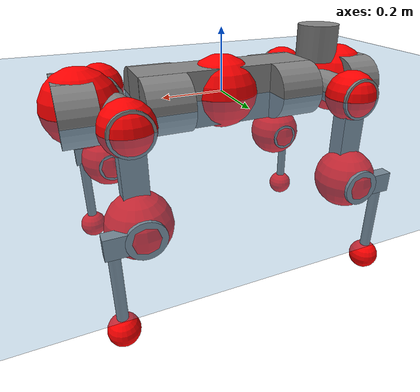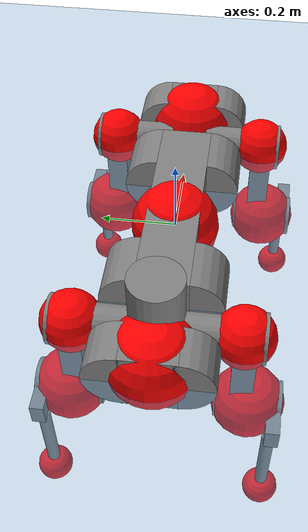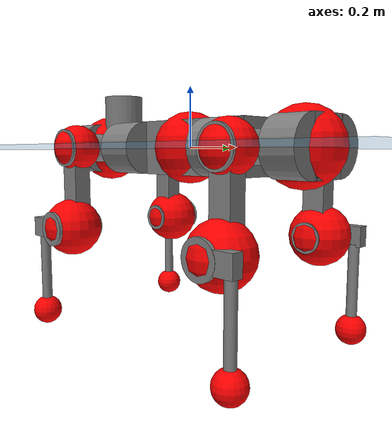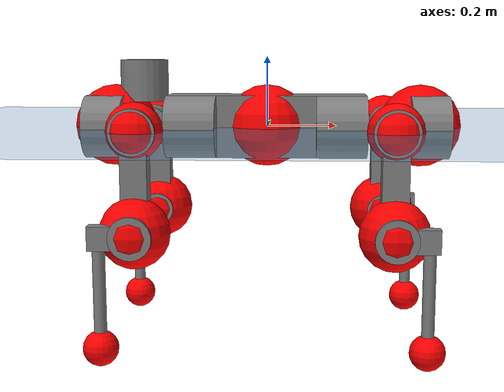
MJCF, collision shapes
<mujoco model="anymal_c">
  <compiler angle="radian" assetdir="assets" balanceinertia="true" inertiafromgeom="false"/>

  <option timestep="0.005" density="1.2" viscosity="2e-05"/>

  <size nkey="1"/>

  <visual>
    <quality shadowsize="8192"/>
    <map shadowclip="0.5"/>
  </visual>

  <default>
    <default class="/">
      <material specular="0" shininess="0.25"/>
      <geom contype="0" conaffinity="0" group="1" solref="-1000 -80"/>
      <site size="0.01 0.005 0.005" group="5"/>
      <general forcelimited="true" forcerange="-80 80" biastype="affine" gainprm="80" biasprm="0 -80 -2"/>
      <default class="anymal_c">
        <joint armature="0.01" damping="0.01" frictionloss="0.1"/>
        <default class="visual">
          <geom type="mesh" group="2"/>
          <default class="visual_zflip"/>
        </default>
        <default class="collision">
          <geom type="cylinder" group="3"/>
          <default class="foot">
            <geom size="0.03 0 0" type="sphere" condim="6" priority="1" friction="0.8 0.02 0.01" solimp="0.015 1 0.03"/>
          </default>
        </default>
      </default>
      <default class="reward_collision_sphere">
        <geom group="5" rgba="1 0 0 1"/>
      </default>
    </default>
  </default>

  <asset>
    <texture type="skybox" colorspace="auto" name="//unnamed_texture_0" builtin="gradient" rgb1="0.95 0.95 0.95" rgb2="0.95 0.95 0.95" width="100" height="600"/>
    <texture type="2d" colorspace="auto" name="texplane" builtin="checker" rgb1="0.345 0.575 0.748" rgb2="0.345 0.575 0.748" markrgb="1 1 1" width="512" height="512"/>
    <texture type="2d" colorspace="linear" name="base" file="base.png"/>
    <texture type="2d" colorspace="linear" name="top_shell" file="top_shell.png"/>
    <texture type="2d" colorspace="linear" name="bottom_shell" file="bottom_shell.png"/>
    <texture type="2d" colorspace="linear" name="remote" file="remote.png"/>
    <texture type="2d" colorspace="linear" name="hatch" file="hatch.png"/>
    <texture type="2d" colorspace="linear" name="handle" file="handle.png"/>
    <texture type="2d" colorspace="linear" name="face" file="face.png"/>
    <texture type="2d" colorspace="linear" name="battery" file="battery.png"/>
    <texture type="2d" colorspace="linear" name="lidar_cage" file="lidar_cage.png"/>
    <texture type="2d" colorspace="linear" name="depth_camera" file="depth_camera.png"/>
    <texture type="2d" colorspace="linear" name="wide_angle_camera" file="wide_angle_camera.png"/>
    <texture type="2d" colorspace="linear" name="lidar" file="lidar.png"/>
    <texture type="2d" colorspace="linear" name="drive" file="drive.png"/>
    <texture type="2d" colorspace="linear" name="hip_l" file="hip_l.png"/>
    <texture type="2d" colorspace="linear" name="shank_l" file="shank_l.png"/>
    <texture type="2d" colorspace="linear" name="foot" file="foot.png"/>
    <texture type="2d" colorspace="linear" name="thigh" file="thigh.png"/>
    <texture type="2d" colorspace="linear" name="shank_r" file="shank_r.png"/>
    <texture type="2d" colorspace="linear" name="hip_r" file="hip_r.png"/>
    <material name="MatPlane" class="/" texture="texplane" texuniform="true" texrepeat="2 2" specular="0.9" shininess="0.5"/>
    <material name="black_plastic" class="/" rgba="0.007 0.007 0.007 1"/>
    <material name="green" class="/" rgba="0.052 0.178 0.033 1"/>
    <material name="red" class="/" rgba="0.178 0.006 0.005 1"/>
    <material name="yellow" class="/" rgba="0.178 0.119 0.006 1"/>
    <material name="lwl" class="/" rgba="0.8 0.8 0.8 1"/>
    <material name="base" class="/" texture="base"/>
    <material name="top_shell" class="/" texture="top_shell"/>
    <material name="bottom_shell" class="/" texture="bottom_shell"/>
    <material name="hip_l" class="/" texture="hip_l"/>
    <material name="thigh" class="/" texture="thigh"/>
    <material name="shank_l" class="/" texture="shank_l"/>
    <material name="foot" class="/" texture="foot"/>
    <material name="hip_r" class="/" texture="hip_r"/>
    <material name="shank" class="/" texture="shank_r"/>
    <material name="hatch" class="/" texture="hatch"/>
    <material name="remote" class="/" texture="remote"/>
    <material name="handle" class="/" texture="handle"/>
    <material name="face" class="/" texture="face"/>
    <material name="depth_camera" class="/" texture="depth_camera"/>
    <material name="wide_angle_camera" class="/" texture="wide_angle_camera"/>
    <material name="battery" class="/" texture="battery"/>
    <material name="lidar_cage" class="/" texture="lidar_cage"/>
    <material name="lidar" class="/" texture="lidar"/>
    <material name="drive" class="/" texture="drive"/>
    <mesh name="base_0" class="/" file="base_0.obj"/>
    <mesh name="base_1" class="/" file="base_1.obj"/>
    <mesh name="base_2" class="/" file="base_2.obj"/>
    <mesh name="base_3" class="/" file="base_3.obj"/>
    <mesh name="base_4" class="/" file="base_4.obj"/>
    <mesh name="base_5" class="/" file="base_5.obj"/>
    <mesh name="top_shell" class="/" file="top_shell.obj"/>
    <mesh name="bottom_shell" class="/" file="bottom_shell.obj"/>
    <mesh name="remote" class="/" file="remote.obj"/>
    <mesh name="handle" class="/" file="handle.obj"/>
    <mesh name="face" class="/" file="face.obj"/>
    <mesh name="wide_angle_camera" class="/" file="wide_angle_camera.obj"/>
    <mesh name="depth_camera" class="/" file="depth_camera.obj"/>
    <mesh name="battery" class="/" file="battery.obj"/>
    <mesh name="lidar_cage" class="/" file="lidar_cage.obj"/>
    <mesh name="lidar" class="/" file="lidar.obj"/>
    <mesh name="drive" class="/" file="drive.obj"/>
    <mesh name="hip_l" class="/" file="hip_l.obj"/>
    <mesh name="thigh" class="/" file="thigh.obj"/>
    <mesh name="shank_l" class="/" file="shank_l.obj"/>
    <mesh name="foot" class="/" file="foot.obj"/>
    <mesh name="hip_r" class="/" file="hip_r.obj"/>
    <mesh name="hatch" class="/" file="hatch.obj"/>
    <mesh name="shank_r" class="/" file="shank_r.obj"/>
  </asset>

  <worldbody>
    <geom name="floor" class="/" size="100 100 0.125" type="plane" group="0" material="MatPlane"/>
    <light name="toplight_shadow" class="/" pos="0 0 5" dir="0.0990148 0.0990148 -0.990148" type="directional" ambient="0.04 0.04 0.04" diffuse="0.55 0.55 0.55" specular="0.12 0.12 0.12"/>
    <light name="toplight_fill" class="/" pos="0 0 5" dir="0.0990148 0.0990148 -0.990148" type="directional" castshadow="false" ambient="0.04 0.04 0.04" diffuse="0.3 0.3 0.3" specular="0.08 0.08 0.08"/>
    <body name="trunk" childclass="anymal_c" pos="-0.000291648 -0.000105916 0.000864625" quat="1 -1.97169e-06 8.88307e-05 -3.79628e-05">
      <inertial pos="0.00301657 0.000279298 0.0482948" quat="0.499558 0.49938 0.501751 0.499307" mass="17.9455" diaginertia="0.584272 0.614752 0.188401"/>
      <joint name="//unnamed_joint_0" type="free" armature="0" damping="0" frictionloss="0"/>
      <geom name="//unnamed_geom_1" class="visual" material="green" mesh="base_0"/>
      <geom name="//unnamed_geom_2" class="visual" material="yellow" mesh="base_1"/>
      <geom name="//unnamed_geom_3" class="visual" material="red" mesh="base_2"/>
      <geom name="//unnamed_geom_4" class="visual" material="black_plastic" mesh="base_3"/>
      <geom name="//unnamed_geom_5" class="visual" material="lwl" mesh="base_4"/>
      <geom name="//unnamed_geom_6" class="visual" material="base" mesh="base_5"/>
      <geom name="trunk_1" class="collision" size="0.286108 0.0690606 0.0887922" type="box"/>
      <geom name="trunk_2" class="collision" size="0.0887922 0.071527" pos="0.214029 0.0700077 0" quat="0.707107 0 0.707107 0"/>
      <geom name="trunk_3" class="collision" size="0.0887922 0.071527" pos="-0.214029 0.0700077 0" quat="0.707107 0 0.707107 0"/>
      <geom name="trunk_4" class="collision" size="0.0887922 0.071527" pos="0.214029 -0.0700077 0" quat="0.707107 0 0.707107 0"/>
      <geom name="trunk_5" class="collision" size="0.0887922 0.071527" pos="-0.214029 -0.0700077 0" quat="0.707107 0 0.707107 0"/>
      <geom name="//unnamed_geom_12" class="visual" material="top_shell" mesh="top_shell"/>
      <geom name="//unnamed_geom_13" class="visual" material="bottom_shell" mesh="bottom_shell"/>
      <geom name="//unnamed_geom_14" class="visual" material="remote" mesh="remote"/>
      <geom name="//unnamed_geom_15" class="visual" material="handle" mesh="handle"/>
      <geom name="//unnamed_geom_16" class="visual" pos="0.407885 0 0" quat="1 0 0 0" material="face" mesh="face"/>
      <geom name="trunk_6" class="collision" size="0.0542619 0.0690606 0.0887922" pos="0.462007 0 0" type="box"/>
      <geom name="//unnamed_geom_18" class="collision" size="0.0887922 0.0542619" pos="0.462007 0.0700077 0" quat="0.707107 0 0.707107 0"/>
      <geom name="//unnamed_geom_19" class="collision" size="0.0887922 0.0542619" pos="0.462007 -0.0700077 0" quat="0.707107 0 0.707107 0"/>
      <geom name="//unnamed_geom_20" class="visual" pos="0.454282 0 -0.0284229" quat="0.965926 0 0.258819 0" material="depth_camera" mesh="depth_camera"/>
      <geom name="//unnamed_geom_21" class="visual" pos="0.504813 0 0.0146045" material="wide_angle_camera" mesh="wide_angle_camera"/>
      <geom name="//unnamed_geom_22" class="visual_zflip" pos="-0.407885 0 0" quat="0 0 0 1" material="face" mesh="face"/>
      <geom name="trunk_7" class="collision" size="0.0542619 0.0690606 0.0887922" pos="-0.462007 0 0" quat="0 0 0 1" type="box"/>
      <geom name="//unnamed_geom_24" class="collision" size="0.0887922 0.0542619" pos="-0.462007 -0.0700077 0" quat="0 -0.707107 0 0.707107"/>
      <geom name="//unnamed_geom_25" class="collision" size="0.0887922 0.0542619" pos="-0.462007 0.0700077 0" quat="0 -0.707107 0 0.707107"/>
      <geom name="//unnamed_geom_26" class="visual" pos="-0.454282 0 -0.0284229" quat="0 -0.258819 0 0.965926" material="depth_camera" mesh="depth_camera"/>
      <geom name="//unnamed_geom_27" class="visual_zflip" pos="-0.504813 0 0.0146045" quat="0 0 0 1" material="wide_angle_camera" mesh="wide_angle_camera"/>
      <geom name="//unnamed_geom_28" class="visual" material="battery" mesh="battery"/>
      <geom name="//unnamed_geom_29" class="visual" pos="0 0.076679 0.028405" quat="0.683013 -0.183013 0.183013 0.683013" material="depth_camera" mesh="depth_camera"/>
      <geom name="//unnamed_geom_30" class="visual" pos="0 -0.076679 0.028405" quat="0.683013 0.183013 0.183013 -0.683013" material="depth_camera" mesh="depth_camera"/>
      <geom name="//unnamed_geom_31" class="visual" pos="-0.358191 0 0.0717056" quat="1 0 0 0" material="lidar_cage" mesh="lidar_cage"/>
      <geom name="trunk_8" class="collision" size="0.0690606 0.0591948" pos="-0.358191 0 0.130241"/>
      <geom name="//unnamed_geom_33" class="visual" pos="-0.358191 6.31325e-06 0.138728" quat="0.707107 0 0 -0.707107" material="lidar" mesh="lidar"/>
      <geom name="//unnamed_geom_34" class="visual" pos="0.295114 0.104003 4.23038e-10" quat="0.258819 0.965926 0 0" material="drive" mesh="drive"/>
      <geom name="//unnamed_geom_35" class="visual" pos="0.295114 -0.104003 -4.23038e-10" quat="0.258819 -0.965926 0 0" material="drive" mesh="drive"/>
      <geom name="//unnamed_geom_36" class="visual" pos="-0.295114 0.104003 -4.23038e-10" quat="0 0 0.965926 -0.258819" material="drive" mesh="drive"/>
      <geom name="//unnamed_geom_37" class="visual" pos="-0.295114 -0.104003 4.23038e-10" quat="0 0 -0.965926 -0.258819" material="drive" mesh="drive"/>
      <geom name="//unnamed_geom_38" class="visual" pos="0.114149 0 0.0712178" quat="1 0 0 0" material="hatch" mesh="hatch"/>
      <geom name="//unnamed_geom_39" class="reward_collision_sphere" size="0.11839"/>
      <geom name="//unnamed_geom_40" class="reward_collision_sphere" size="0.11839" pos="0.442819 0 0"/>
      <geom name="//unnamed_geom_41" class="reward_collision_sphere" size="0.11839" pos="-0.442819 0 0"/>
      <site name="imu" pos="0.243113 0.0083085 0.0432169" size="0.00986579"/>
      <camera name="track" pos="0 -2.00022 0" quat="0.707107 0.707107 0 0" mode="trackcom"/>
      <camera name="ego_camera" pos="0.442819 0 -0.0390235" quat="-0.5 -0.5 0.5 0.5"/>
      <body name="LF_HIP" pos="0.29557 0.10392 -0.000585789" quat="0.258572 0.965992 -7.99221e-05 3.58274e-05">
        <inertial pos="0.0555184 -0.0145125 -0.00762996" quat="-0.129962 0.708587 -0.132459 0.680786" mass="2.67903" diaginertia="0.00541443 0.00491765 0.00292091"/>
        <joint name="LF_HAA" pos="0 0 0" axis="0.999998 0.00195959 -0.00020349" range="-0.713507 0.478071" armature="0.00989696" damping="0.00684715" frictionloss="0.0970492"/>
        <geom name="//unnamed_geom_42" class="visual" pos="0 2.48854e-05 -4.08741e-06" quat="0.258819 -0.965926 0 0" material="hip_l" mesh="hip_l"/>
        <geom name="//unnamed_geom_43" class="visual" pos="0.0589441 -0.0716261 -0.041172" quat="0.183013 -0.683013 0.683013 0.183013" material="drive" mesh="drive"/>
        <geom name="//unnamed_geom_44" class="collision" size="0.049329 0.0690606" pos="0.0589441 -0.0119611 -0.00673643" quat="-0.353553 -0.612372 0.612372 -0.353553"/>
        <body name="LF_THIGH" pos="0.0593364 -0.0738134 -0.0410948" quat="0.182932 -0.682887 0.683094 0.183259">
          <inertial pos="0.030163 0.000110582 -0.239875" quat="0.993244 -0.00396066 -0.0789309 0.0849777" mass="2.91038" diaginertia="0.0279018 0.0298108 0.00367473"/>
          <joint name="LF_HFE" pos="0 0 0" axis="1 5.77766e-06 -0.000296865" stiffness="0.00266922" range="-3.1522 3.14569" armature="0.00996358" damping="0.00694686" frictionloss="0.100633"/>
          <geom name="//unnamed_geom_45" class="visual" pos="-0.000319719 -5.03802e-07 0" quat="0.707107 0 0 -0.707107" material="thigh" mesh="thigh"/>
          <geom name="//unnamed_geom_46" class="collision" size="0.0641277 0.0394632" pos="0.0393616 0 0" quat="0.5 0.5 -0.5 -0.5"/>
          <geom name="//unnamed_geom_47" class="collision" size="0.0369967 0.0295974 0.139417" pos="0.0295212 0 -0.137864" quat="0.707107 0 0 -0.707107" type="box"/>
          <geom name="//unnamed_geom_48" class="visual" pos="0.0986993 0 -0.278042" quat="1 0 0 0" material="drive" mesh="drive"/>
          <geom name="//unnamed_geom_49" class="collision" size="0.049329 0.0690606" pos="0.0298164 0 -0.278042" quat="0.707107 0 0.707107 0"/>
          <geom name="//unnamed_geom_50" class="reward_collision_sphere" size="0.0789264" pos="0.024601 0 0"/>
          <body name="LF_SHANK" pos="0.0978135 0.000499176 -0.278292" quat="1 0.000231142 0.000156646 8.21953e-05">
            <inertial pos="0.00492645 -0.0611783 -0.0791933" quat="0.993124 -0.114314 0.000688179 -0.0252327" mass="0.569937" diaginertia="0.00945006 0.0092686 0.000991768"/>
            <joint name="LF_KFE" pos="0 0 0" axis="1 0.000328313 0.000375009" range="-3.123 3.14108" armature="0.0095349" damping="0.010322" frictionloss="0.0944965"/>
            <geom name="//unnamed_geom_51" class="visual" pos="-0.000104253 -0.000555884 0" quat="0.707107 0 0 -0.707107" material="shank_l" mesh="shank_l"/>
            <geom name="LF_kfe_act" class="collision" size="0.0591948 0.0197316" pos="0.0196808 0 0" quat="0.5 0.5 -0.5 -0.5"/>
            <geom name="//unnamed_geom_53" class="collision" size="0.0567273 0.0332971 0.018745" pos="0.0196808 -0.0575054 0" quat="0.5 0.5 -0.5 -0.5" type="box"/>
            <geom name="//unnamed_geom_54" class="visual" pos="0.0128418 -0.0881389 -0.329719" quat="0.382683 0 0 -0.92388" material="foot" mesh="foot"/>
            <geom name="LF_calf" class="collision" size="0.0172651 0.139356" pos="0.0128417 -0.0879597 -0.16486" quat="0.707107 0 0 -0.707107"/>
            <geom name="LF_foot" class="foot" size="0.0309857" pos="0.0128417 -0.0879597 -0.307768" quat="0.707107 0 0 -0.707107"/>
            <geom name="//unnamed_geom_57" class="reward_collision_sphere" size="0.0986579" pos="-0.0492021 0 0"/>
            <geom name="//unnamed_geom_58" class="reward_collision_sphere" size="0.049329" pos="0.0128417 -0.0879597 -0.307768"/>
            <site name="LF_foot" class="foot" pos="0.0128417 -0.0879597 -0.307768" quat="0.707107 0 0 -0.707107" size="0.00986579"/>
          </body>
        </body>
      </body>
      <body name="RF_HIP" pos="0.296364 -0.104405 -0.000244597" quat="0.258895 -0.965906 0.000128558 2.68283e-05">
        <inertial pos="0.0554702 0.0159188 -0.00845982" quat="0.135787 0.678657 0.127791 0.710392" mass="2.62661" diaginertia="0.00536784 0.00482775 0.00287583"/>
        <joint name="RF_HAA" pos="0 0 0" axis="0.999998 0.00214661 0.00039805" range="-0.489115 0.724074" armature="0.0101208" damping="0.00947156" frictionloss="0.10035"/>
        <geom name="//unnamed_geom_59" class="visual" pos="0 -2.48852e-05 -4.0874e-06" quat="0.258819 0.965926 0 0" material="hip_r" mesh="hip_r"/>
        <geom name="//unnamed_geom_60" class="visual" pos="0.0589441 0.0716261 -0.041172" quat="0.183013 0.683013 0.683013 -0.183013" material="drive" mesh="drive"/>
        <geom name="//unnamed_geom_61" class="collision" size="0.049329 0.0690606" pos="0.0589441 0.0119611 -0.00673643" quat="-0.353553 0.612372 0.612372 0.353553"/>
        <body name="RF_THIGH" pos="0.0593624 0.0725246 -0.0407043" quat="0.183091 0.683117 0.682874 -0.183063">
          <inertial pos="0.0304456 0.000103977 -0.239197" quat="0.992605 -0.00712773 -0.0813418 0.0898274" mass="2.97768" diaginertia="0.028083 0.0298785 0.0037158"/>
          <joint name="RF_HFE" pos="0 0 0" axis="0.999998 0.00178889 -3.127e-05" stiffness="0.00598247" range="-3.13602 3.12107" armature="0.00989504" damping="0.0116393" frictionloss="0.102097"/>
          <geom name="//unnamed_geom_62" class="visual" pos="-0.000319719 -5.03802e-07 0" quat="0.707107 0 0 -0.707107" material="thigh" mesh="thigh"/>
          <geom name="//unnamed_geom_63" class="collision" size="0.0641277 0.0394632" pos="0.0393616 0 0" quat="0.5 0.5 0.5 0.5"/>
          <geom name="//unnamed_geom_64" class="collision" size="0.0369967 0.0295974 0.139417" pos="0.0295212 0 -0.137864" quat="0.707107 0 0 0.707107" type="box"/>
          <geom name="//unnamed_geom_65" class="visual" pos="0.0986993 0 -0.278042" quat="1 0 0 0" material="drive" mesh="drive"/>
          <geom name="//unnamed_geom_66" class="collision" size="0.049329 0.0690606" pos="0.0298164 0 -0.278042" quat="0.707107 0 0.707107 0"/>
          <geom name="//unnamed_geom_67" class="reward_collision_sphere" size="0.0789264" pos="0.024601 0 0"/>
          <body name="RF_SHANK" pos="0.0983441 0.000106485 -0.278141" quat="1 9.36213e-05 7.61712e-05 0.000103483">
            <inertial pos="0.00560239 0.0614534 -0.0785975" quat="0.993208 0.112987 -0.00155062 0.0277466" mass="0.563954" diaginertia="0.00934637 0.00931993 0.000986404"/>
            <joint name="RF_KFE" pos="0 0 0" axis="0.999997 0.00133434 0.00206633" range="-3.12322 3.12067" armature="0.00972114" damping="0.00879053" frictionloss="0.0980251"/>
            <geom name="//unnamed_geom_68" class="visual" pos="-0.000104253 0.000555882 0" quat="0.707107 0 0 0.707107" material="shank" mesh="shank_r"/>
            <geom name="RF_kfe_act" class="collision" size="0.0591948 0.0197316" pos="0.0196808 0 0" quat="0.5 0.5 0.5 0.5"/>
            <geom name="//unnamed_geom_70" class="collision" size="0.0567273 0.0332971 0.018745" pos="0.0196808 0.0575054 0" quat="0.5 0.5 0.5 0.5" type="box"/>
            <geom name="//unnamed_geom_71" class="visual" pos="0.0128417 0.0881389 -0.329719" quat="0.382683 0 0 0.92388" material="foot" mesh="foot"/>
            <geom name="RF_calf" class="collision" size="0.0172651 0.139356" pos="0.0128417 0.0879597 -0.16486" quat="0.707107 0 0 0.707107"/>
            <geom name="RF_foot" class="foot" size="0.0285589" pos="0.0128417 0.0879597 -0.307768" quat="0.707107 0 0 0.707107"/>
            <geom name="//unnamed_geom_74" class="reward_collision_sphere" size="0.0986579" pos="-0.0492021 0 0"/>
            <geom name="//unnamed_geom_75" class="reward_collision_sphere" size="0.049329" pos="0.0128417 0.0879597 -0.307768"/>
            <site name="RF_foot" class="foot" pos="0.0128417 0.0879597 -0.307768" quat="0.707107 0 0 0.707107" size="0.00986579"/>
          </body>
        </body>
      </body>
      <body name="LH_HIP" pos="-0.294577 0.103946 0.00014149" quat="-0.00017679 -0.000121321 0.965941 -0.258762">
        <inertial pos="0.0555751 0.0148666 -0.00832788" quat="0.134736 0.678187 0.131898 0.71029" mass="2.66017" diaginertia="0.00542782 0.00496591 0.00294121"/>
        <joint name="LH_HAA" pos="0 0 0" axis="0.999998 -0.00139703 -0.0014146" range="-0.49102 0.709168" armature="0.0100207" damping="0.0109222" frictionloss="0.0989167"/>
        <geom name="//unnamed_geom_76" class="visual" pos="0 -2.48852e-05 -4.0874e-06" quat="-0.258819 -0.965926 0 0" material="hip_r" mesh="hip_r"/>
        <geom name="//unnamed_geom_77" class="visual" pos="0.0589441 0.0716261 -0.041172" quat="0.183013 0.683013 0.683013 -0.183013" material="drive" mesh="drive"/>
        <geom name="//unnamed_geom_78" class="collision" size="0.049329 0.0690606" pos="0.0589441 0.0119611 -0.00673643" quat="-0.353553 0.612372 0.612372 0.353553"/>
        <body name="LH_THIGH" pos="0.0592092 0.0725447 -0.0411521" quat="0.183065 0.683023 0.682968 -0.183088">
          <inertial pos="0.0303576 -0.000765722 -0.239666" quat="0.992755 -0.00367181 -0.0805451 0.0890912" mass="2.94327" diaginertia="0.0279141 0.0301801 0.00371205"/>
          <joint name="LH_HFE" pos="0 0 0" axis="0.999999 0.000810531 -0.000983529" range="-3.14396 3.14401" armature="0.0101325" damping="0.010801" frictionloss="0.0995145"/>
          <geom name="//unnamed_geom_79" class="visual" pos="-0.000319719 -5.03802e-07 0" quat="0.707107 0 0 -0.707107" material="thigh" mesh="thigh"/>
          <geom name="//unnamed_geom_80" class="collision" size="0.0641277 0.0394632" pos="0.0393616 0 0" quat="0.5 0.5 -0.5 -0.5"/>
          <geom name="//unnamed_geom_81" class="collision" size="0.0369967 0.0295974 0.139417" pos="0.0295212 0 -0.137864" quat="0.707107 0 0 -0.707107" type="box"/>
          <geom name="//unnamed_geom_82" class="visual" pos="0.0986993 0 -0.278042" quat="1 0 0 0" material="drive" mesh="drive"/>
          <geom name="//unnamed_geom_83" class="collision" size="0.049329 0.0690606" pos="0.0298164 0 -0.278042" quat="0.707107 0 0.707107 0"/>
          <geom name="//unnamed_geom_84" class="reward_collision_sphere" size="0.0789264" pos="0.024601 0 0"/>
          <body name="LH_SHANK" pos="0.0998218 -0.000750656 -0.278401" quat="1 -1.0753e-05 2.10158e-05 3.45988e-05">
            <inertial pos="0.00536932 0.0611251 -0.078741" quat="0.992957 0.115549 0.00209308 0.0260691" mass="0.563847" diaginertia="0.00933157 0.00921351 0.0009828"/>
            <joint name="LH_KFE" pos="0 0 0" axis="0.999997 -0.00126129 0.00208372" range="-3.14485 3.13985" armature="0.0102414" damping="0.00765248" frictionloss="0.0944341"/>
            <geom name="//unnamed_geom_85" class="visual" pos="-0.000104253 0.000555882 0" quat="-0.707107 0 0 -0.707107" material="shank" mesh="shank_r"/>
            <geom name="LH_kfe_act" class="collision" size="0.0591948 0.0197316" pos="0.0196808 0 0" quat="0.5 0.5 -0.5 -0.5"/>
            <geom name="//unnamed_geom_87" class="collision" size="0.0567273 0.0332971 0.018745" pos="0.0196808 0.0575054 0" quat="0.5 0.5 -0.5 -0.5" type="box"/>
            <geom name="//unnamed_geom_88" class="visual" pos="0.0128417 0.0881389 -0.329719" quat="-0.382683 0 0 -0.92388" material="foot" mesh="foot"/>
            <geom name="LH_calf" class="collision" size="0.0172651 0.139356" pos="0.0128417 0.0879597 -0.16486" quat="0.707107 0 0 -0.707107"/>
            <geom name="LH_foot" class="foot" size="0.030201" pos="0.0128417 0.0879597 -0.307768" quat="0.707107 0 0 -0.707107"/>
            <geom name="//unnamed_geom_91" class="reward_collision_sphere" size="0.0986579" pos="-0.0492021 0 0"/>
            <geom name="//unnamed_geom_92" class="reward_collision_sphere" size="0.049329" pos="0.0128417 0.0879597 -0.307768"/>
            <site name="LH_foot" class="foot" pos="0.0128417 0.0879597 -0.307768" quat="0.707107 0 0 -0.707107" size="0.00986579"/>
          </body>
        </body>
      </body>
      <body name="RH_HIP" pos="-0.294941 -0.1039 0.000403873" quat="2.1066e-05 0.000137379 -0.965902 -0.258907">
        <inertial pos="0.0559004 -0.0155434 -0.00876219" quat="-0.128535 0.708922 -0.1336 0.680485" mass="2.68754" diaginertia="0.00543228 0.00495066 0.0029219"/>
        <joint name="RH_HAA" pos="0 0 0" axis="1 0.000334104 0.000743933" stiffness="0.000109958" range="-0.712491 0.498059" armature="0.0098861" damping="0.0141461" frictionloss="0.0980892"/>
        <geom name="//unnamed_geom_93" class="visual" pos="0 2.48854e-05 -4.08741e-06" quat="-0.258819 0.965926 0 0" material="hip_l" mesh="hip_l"/>
        <geom name="//unnamed_geom_94" class="visual" pos="0.0589441 -0.0716261 -0.041172" quat="-0.183013 0.683013 -0.683013 -0.183013" material="drive" mesh="drive"/>
        <geom name="//unnamed_geom_95" class="collision" size="0.049329 0.0690606" pos="0.0589441 -0.0119611 -0.00673643" quat="0.353553 0.612372 -0.612372 0.353553"/>
        <body name="RH_THIGH" pos="0.0584605 -0.0720375 -0.0409008" quat="-0.183029 0.683006 -0.683008 -0.183039">
          <inertial pos="0.0296187 -0.000511323 -0.239285" quat="0.993168 -0.00513648 -0.0806437 0.0841826" mass="2.92118" diaginertia="0.0279009 0.0297212 0.00369308"/>
          <joint name="RH_HFE" pos="0 0 0" axis="0.999999 0.0015587 -0.000404009" stiffness="0.000273816" range="-3.14528 3.13939" armature="0.00991373" damping="0.00769645" frictionloss="0.0979866"/>
          <geom name="//unnamed_geom_96" class="visual" pos="-0.000319719 -5.03802e-07 0" quat="0.707107 0 0 -0.707107" material="thigh" mesh="thigh"/>
          <geom name="//unnamed_geom_97" class="collision" size="0.0641277 0.0394632" pos="0.0393616 0 0" quat="0.5 0.5 0.5 0.5"/>
          <geom name="//unnamed_geom_98" class="collision" size="0.0369967 0.0295974 0.139417" pos="0.0295212 0 -0.137864" quat="0.707107 0 0 0.707107" type="box"/>
          <geom name="//unnamed_geom_99" class="visual" pos="0.0986993 0 -0.278042" quat="1 0 0 0" material="drive" mesh="drive"/>
          <geom name="//unnamed_geom_100" class="collision" size="0.049329 0.0690606" pos="0.0298164 0 -0.278042" quat="0.707107 0 0.707107 0"/>
          <geom name="//unnamed_geom_101" class="reward_collision_sphere" size="0.0789264" pos="0.024601 0 0"/>
          <body name="RH_SHANK" pos="0.0985024 -0.000258176 -0.2775" quat="1 -0.000117765 6.62203e-06 -0.000187219">
            <inertial pos="0.00542949 -0.0611968 -0.0789568" quat="0.992786 -0.117126 0.00150965 -0.0256003" mass="0.561833" diaginertia="0.00942558 0.00913656 0.000985353"/>
            <joint name="RH_KFE" pos="0 0 0" axis="0.999974 0.00380476 -0.00606412" range="-3.1274 3.12926" armature="0.00978387" damping="0.00983134" frictionloss="0.0988322"/>
            <geom name="//unnamed_geom_102" class="visual" pos="-0.000104253 -0.000555884 0" quat="0.707107 0 0 -0.707107" material="shank_l" mesh="shank_l"/>
            <geom name="RH_kfe_act" class="collision" size="0.0591948 0.0197316" pos="0.0196808 0 0" quat="0.5 0.5 0.5 0.5"/>
            <geom name="//unnamed_geom_104" class="collision" size="0.0567273 0.0332971 0.018745" pos="0.0196808 -0.0575054 0" quat="0.5 0.5 0.5 0.5" type="box"/>
            <geom name="//unnamed_geom_105" class="visual" pos="0.0128418 -0.0881389 -0.329719" quat="0.382683 0 0 -0.92388" material="foot" mesh="foot"/>
            <geom name="RH_calf" class="collision" size="0.0172651 0.139356" pos="0.0128417 -0.0879597 -0.16486" quat="0.707107 0 0 0.707107"/>
            <geom name="RH_foot" class="foot" size="0.0281746" pos="0.0128417 -0.0879597 -0.307768" quat="0.707107 0 0 0.707107"/>
            <geom name="//unnamed_geom_108" class="reward_collision_sphere" size="0.0986579" pos="-0.0492021 0 0"/>
            <geom name="//unnamed_geom_109" class="reward_collision_sphere" size="0.049329" pos="0.0128417 -0.0879597 -0.307768"/>
            <site name="RH_foot" class="foot" pos="0.0128417 -0.0879597 -0.307768" quat="0.707107 0 0 0.707107" size="0.00986579"/>
          </body>
        </body>
      </body>
    </body>
  </worldbody>

  <contact>
    <pair class="/" geom1="floor" geom2="LF_foot" name="//unnamed_contact_0"/>
    <pair class="/" geom1="floor" geom2="RF_foot" name="//unnamed_contact_1"/>
    <pair class="/" geom1="floor" geom2="LH_foot" name="//unnamed_contact_2"/>
    <pair class="/" geom1="floor" geom2="RH_foot" name="//unnamed_contact_3"/>
  </contact>

  <actuator>
    <general name="LF_HAA" class="/" joint="LF_HAA" forcerange="-79.2709 79.2709" gainprm="80.9713" biasprm="0 -80.9713 -1.96588"/>
    <general name="LF_HFE" class="/" joint="LF_HFE" forcerange="-80.8958 80.8958" gainprm="80.9713" biasprm="0 -80.9713 -1.96588"/>
    <general name="LF_KFE" class="/" joint="LF_KFE" forcerange="-78.652 78.652" gainprm="80.9713" biasprm="0 -80.9713 -1.96588"/>
    <general name="RF_HAA" class="/" joint="RF_HAA" forcerange="-81.8925 81.8925" gainprm="80.9713" biasprm="0 -80.9713 -1.96588"/>
    <general name="RF_HFE" class="/" joint="RF_HFE" forcerange="-78.1516 78.1516" gainprm="80.9713" biasprm="0 -80.9713 -1.96588"/>
    <general name="RF_KFE" class="/" joint="RF_KFE" forcerange="-80.7122 80.7122" gainprm="80.9713" biasprm="0 -80.9713 -1.96588"/>
    <general name="LH_HAA" class="/" joint="LH_HAA" forcerange="-79.4188 79.4188" gainprm="80.9713" biasprm="0 -80.9713 -1.96588"/>
    <general name="LH_HFE" class="/" joint="LH_HFE" forcerange="-81.0595 81.0595" gainprm="80.9713" biasprm="0 -80.9713 -1.96588"/>
    <general name="LH_KFE" class="/" joint="LH_KFE" forcerange="-79.6963 79.6963" gainprm="80.9713" biasprm="0 -80.9713 -1.96588"/>
    <general name="RH_HAA" class="/" joint="RH_HAA" forcerange="-78.1288 78.1288" gainprm="80.9713" biasprm="0 -80.9713 -1.96588"/>
    <general name="RH_HFE" class="/" joint="RH_HFE" forcerange="-79.0284 79.0284" gainprm="80.9713" biasprm="0 -80.9713 -1.96588"/>
    <general name="RH_KFE" class="/" joint="RH_KFE" forcerange="-77.1729 77.1729" gainprm="80.9713" biasprm="0 -80.9713 -1.96588"/>
  </actuator>

  <sensor>
    <gyro site="imu" name="imu_angular_velocity"/>
    <velocimeter site="imu" name="imu_linear_velocity"/>
    <framelinvel objtype="site" objname="LF_foot" name="LF_foot_global_linear_velocity"/>
    <framelinvel objtype="site" objname="RF_foot" name="RF_foot_global_linear_velocity"/>
    <framelinvel objtype="site" objname="LH_foot" name="LH_foot_global_linear_velocity"/>
    <framelinvel objtype="site" objname="RH_foot" name="RH_foot_global_linear_velocity"/>
  </sensor>

  <keyframe>
    <key name="home" qpos="0 0 0.55 1 0 0 0 0 0.4 -0.8 0 -0.4 0.8 0 -0.4 0.8 0 0.4 -0.8"/>
  </keyframe>
</mujoco>
